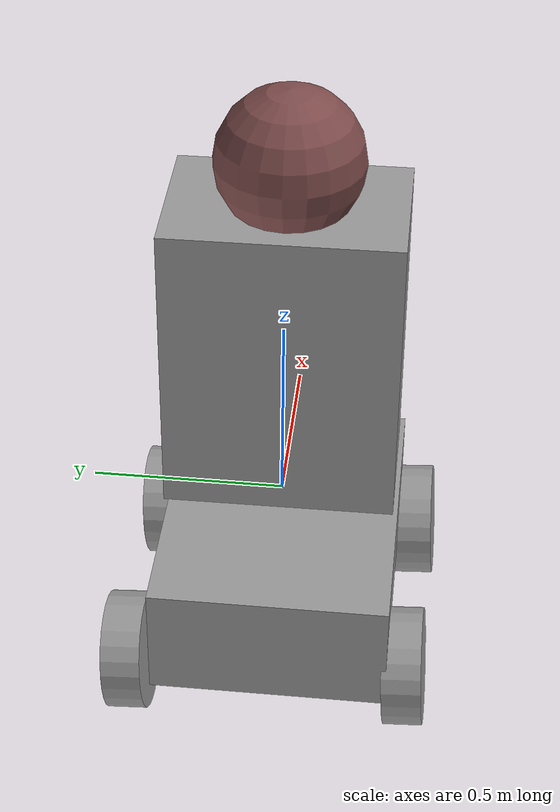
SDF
<?xml version='1.0'?>
<sdf version='1.6'>
  <model name='myrobot'>
    <link name='link_0'>
      <pose frame=''>-0.057634 -0.007553 -0.159414 0 -0 0</pose>
      <inertial>
        <mass>1</mass>
        <inertia>
          <ixx>0.166667</ixx>
          <ixy>0</ixy>
          <ixz>0</ixz>
          <iyy>0.166667</iyy>
          <iyz>0</iyz>
          <izz>0.166667</izz>
        </inertia>
        <pose frame=''>0 0 0 0 -0 0</pose>
      </inertial>
      <gravity>1</gravity>
      <self_collide>0</self_collide>
      <kinematic>0</kinematic>
      <visual name='visual'>
        <pose frame=''>0 0 0 0 -0 0</pose>
        <geometry>
          <box>
            <size>0.8 0.6 0.3</size>
          </box>
        </geometry>
        <material>
          <lighting>1</lighting>
          <script>
            <uri>file://media/materials/scripts/gazebo.material</uri>
            <name>Gazebo/Grey</name>
          </script>
          <shader type='pixel'>
            <normal_map>__default__</normal_map>
          </shader>
          <ambient>0.34 0.33 0.3 1</ambient>
          <diffuse>0.7 0.7 0.7 1</diffuse>
          <specular>0.01 0.01 0.01 1</specular>
          <emissive>0 0 0 1</emissive>
        </material>
        <transparency>0</transparency>
        <cast_shadows>1</cast_shadows>
      </visual>
      <collision name='collision'>
        <laser_retro>0</laser_retro>
        <max_contacts>10</max_contacts>
        <pose frame=''>0 0 0 0 -0 0</pose>
        <geometry>
          <box>
            <size>0.8 0.6 0.3</size>
          </box>
        </geometry>
        <surface>
          <friction>
            <ode>
              <mu>1</mu>
              <mu2>1</mu2>
              <fdir1>0 0 0</fdir1>
              <slip1>0</slip1>
              <slip2>0</slip2>
            </ode>
            <torsional>
              <coefficient>1</coefficient>
              <patch_radius>0</patch_radius>
              <surface_radius>0</surface_radius>
              <use_patch_radius>1</use_patch_radius>
              <ode>
                <slip>0</slip>
              </ode>
            </torsional>
          </friction>
          <bounce>
            <restitution_coefficient>0</restitution_coefficient>
            <threshold>1e+06</threshold>
          </bounce>
          <contact>
            <collide_without_contact>0</collide_without_contact>
            <collide_without_contact_bitmask>1</collide_without_contact_bitmask>
            <collide_bitmask>1</collide_bitmask>
            <ode>
              <soft_cfm>0</soft_cfm>
              <soft_erp>0.2</soft_erp>
              <kp>1e+13</kp>
              <kd>1</kd>
              <max_vel>0.01</max_vel>
              <min_depth>0</min_depth>
            </ode>
            <bullet>
              <split_impulse>1</split_impulse>
              <split_impulse_penetration_threshold>-0.01</split_impulse_penetration_threshold>
              <soft_cfm>0</soft_cfm>
              <soft_erp>0.2</soft_erp>
              <kp>1e+13</kp>
              <kd>1</kd>
            </bullet>
          </contact>
        </surface>
      </collision>
    </link>
    <link name='link_1_clone'>
      <pose frame=''>-0.340075 -0.349787 -0.28557 1.50886 -0 0</pose>
      <inertial>
        <mass>1</mass>
        <inertia>
          <ixx>0.145833</ixx>
          <ixy>0</ixy>
          <ixz>0</ixz>
          <iyy>0.145833</iyy>
          <iyz>0</iyz>
          <izz>0.125</izz>
        </inertia>
        <pose frame=''>0 0 0 0 -0 0</pose>
      </inertial>
      <self_collide>0</self_collide>
      <kinematic>0</kinematic>
      <visual name='visual'>
        <pose frame=''>0 0 0 0 -0 0</pose>
        <geometry>
          <cylinder>
            <radius>0.15</radius>
            <length>0.1</length>
          </cylinder>
        </geometry>
        <material>
          <lighting>1</lighting>
          <script>
            <uri>file://media/materials/scripts/gazebo.material</uri>
            <name>Gazebo/Grey</name>
          </script>
          <shader type='pixel'>
            <normal_map>__default__</normal_map>
          </shader>
          <ambient>0.3 0.3 0.3 1</ambient>
          <diffuse>0.7 0.7 0.7 1</diffuse>
          <specular>0.01 0.01 0.01 1</specular>
          <emissive>0 0 0 1</emissive>
        </material>
        <transparency>0</transparency>
        <cast_shadows>1</cast_shadows>
      </visual>
      <collision name='collision'>
        <laser_retro>0</laser_retro>
        <max_contacts>10</max_contacts>
        <pose frame=''>0 0 0 0 -0 0</pose>
        <geometry>
          <cylinder>
            <radius>0.15</radius>
            <length>0.1</length>
          </cylinder>
        </geometry>
        <surface>
          <friction>
            <ode>
              <mu>1</mu>
              <mu2>1</mu2>
              <fdir1>0 0 0</fdir1>
              <slip1>0</slip1>
              <slip2>0</slip2>
            </ode>
            <torsional>
              <coefficient>1</coefficient>
              <patch_radius>0</patch_radius>
              <surface_radius>0</surface_radius>
              <use_patch_radius>1</use_patch_radius>
              <ode>
                <slip>0</slip>
              </ode>
            </torsional>
          </friction>
          <bounce>
            <restitution_coefficient>0</restitution_coefficient>
            <threshold>1e+06</threshold>
          </bounce>
          <contact>
            <collide_without_contact>0</collide_without_contact>
            <collide_without_contact_bitmask>1</collide_without_contact_bitmask>
            <collide_bitmask>1</collide_bitmask>
            <ode>
              <soft_cfm>0</soft_cfm>
              <soft_erp>0.2</soft_erp>
              <kp>1e+13</kp>
              <kd>1</kd>
              <max_vel>0.01</max_vel>
              <min_depth>0</min_depth>
            </ode>
            <bullet>
              <split_impulse>1</split_impulse>
              <split_impulse_penetration_threshold>-0.01</split_impulse_penetration_threshold>
              <soft_cfm>0</soft_cfm>
              <soft_erp>0.2</soft_erp>
              <kp>1e+13</kp>
              <kd>1</kd>
            </bullet>
          </contact>
        </surface>
      </collision>
    </link>
    <link name='link_1_clone_clone'>
      <pose frame=''>0.247644 -0.351459 -0.28557 1.50886 -0 0</pose>
      <inertial>
        <mass>1</mass>
        <inertia>
          <ixx>0.145833</ixx>
          <ixy>0</ixy>
          <ixz>0</ixz>
          <iyy>0.145833</iyy>
          <iyz>0</iyz>
          <izz>0.125</izz>
        </inertia>
        <pose frame=''>0 0 0 0 -0 0</pose>
      </inertial>
      <self_collide>0</self_collide>
      <kinematic>0</kinematic>
      <visual name='visual'>
        <pose frame=''>0 0 0 0 -0 0</pose>
        <geometry>
          <cylinder>
            <radius>0.15</radius>
            <length>0.1</length>
          </cylinder>
        </geometry>
        <material>
          <lighting>1</lighting>
          <script>
            <uri>file://media/materials/scripts/gazebo.material</uri>
            <name>Gazebo/Grey</name>
          </script>
          <shader type='pixel'>
            <normal_map>__default__</normal_map>
          </shader>
          <ambient>0.3 0.3 0.3 1</ambient>
          <diffuse>0.7 0.7 0.7 1</diffuse>
          <specular>0.01 0.01 0.01 1</specular>
          <emissive>0 0 0 1</emissive>
        </material>
        <transparency>0</transparency>
        <cast_shadows>1</cast_shadows>
      </visual>
      <collision name='collision'>
        <laser_retro>0</laser_retro>
        <max_contacts>10</max_contacts>
        <pose frame=''>0 0 0 0 -0 0</pose>
        <geometry>
          <cylinder>
            <radius>0.15</radius>
            <length>0.1</length>
          </cylinder>
        </geometry>
        <surface>
          <friction>
            <ode>
              <mu>1</mu>
              <mu2>1</mu2>
              <fdir1>0 0 0</fdir1>
              <slip1>0</slip1>
              <slip2>0</slip2>
            </ode>
            <torsional>
              <coefficient>1</coefficient>
              <patch_radius>0</patch_radius>
              <surface_radius>0</surface_radius>
              <use_patch_radius>1</use_patch_radius>
              <ode>
                <slip>0</slip>
              </ode>
            </torsional>
          </friction>
          <bounce>
            <restitution_coefficient>0</restitution_coefficient>
            <threshold>1e+06</threshold>
          </bounce>
          <contact>
            <collide_without_contact>0</collide_without_contact>
            <collide_without_contact_bitmask>1</collide_without_contact_bitmask>
            <collide_bitmask>1</collide_bitmask>
            <ode>
              <soft_cfm>0</soft_cfm>
              <soft_erp>0.2</soft_erp>
              <kp>1e+13</kp>
              <kd>1</kd>
              <max_vel>0.01</max_vel>
              <min_depth>0</min_depth>
            </ode>
            <bullet>
              <split_impulse>1</split_impulse>
              <split_impulse_penetration_threshold>-0.01</split_impulse_penetration_threshold>
              <soft_cfm>0</soft_cfm>
              <soft_erp>0.2</soft_erp>
              <kp>1e+13</kp>
              <kd>1</kd>
            </bullet>
          </contact>
        </surface>
      </collision>
    </link>
    <link name='link_1_clone_clone_0'>
      <pose frame=''>0.255669 0.344642 -0.284499 1.50886 -0 0</pose>
      <inertial>
        <mass>1</mass>
        <inertia>
          <ixx>0.145833</ixx>
          <ixy>0</ixy>
          <ixz>0</ixz>
          <iyy>0.145833</iyy>
          <iyz>0</iyz>
          <izz>0.125</izz>
        </inertia>
        <pose frame=''>0 0 0 0 -0 0</pose>
      </inertial>
      <self_collide>0</self_collide>
      <kinematic>0</kinematic>
      <visual name='visual'>
        <pose frame=''>0 0 0 0 -0 0</pose>
        <geometry>
          <cylinder>
            <radius>0.15</radius>
            <length>0.1</length>
          </cylinder>
        </geometry>
        <material>
          <lighting>1</lighting>
          <script>
            <uri>file://media/materials/scripts/gazebo.material</uri>
            <name>Gazebo/Grey</name>
          </script>
          <shader type='pixel'>
            <normal_map>__default__</normal_map>
          </shader>
          <ambient>0.3 0.3 0.3 1</ambient>
          <diffuse>0.7 0.7 0.7 1</diffuse>
          <specular>0.01 0.01 0.01 1</specular>
          <emissive>0 0 0 1</emissive>
        </material>
        <transparency>0</transparency>
        <cast_shadows>1</cast_shadows>
      </visual>
      <collision name='collision'>
        <laser_retro>0</laser_retro>
        <max_contacts>10</max_contacts>
        <pose frame=''>0 0 0 0 -0 0</pose>
        <geometry>
          <cylinder>
            <radius>0.15</radius>
            <length>0.1</length>
          </cylinder>
        </geometry>
        <surface>
          <friction>
            <ode>
              <mu>1</mu>
              <mu2>1</mu2>
              <fdir1>0 0 0</fdir1>
              <slip1>0</slip1>
              <slip2>0</slip2>
            </ode>
            <torsional>
              <coefficient>1</coefficient>
              <patch_radius>0</patch_radius>
              <surface_radius>0</surface_radius>
              <use_patch_radius>1</use_patch_radius>
              <ode>
                <slip>0</slip>
              </ode>
            </torsional>
          </friction>
          <bounce>
            <restitution_coefficient>0</restitution_coefficient>
            <threshold>1e+06</threshold>
          </bounce>
          <contact>
            <collide_without_contact>0</collide_without_contact>
            <collide_without_contact_bitmask>1</collide_without_contact_bitmask>
            <collide_bitmask>1</collide_bitmask>
            <ode>
              <soft_cfm>0</soft_cfm>
              <soft_erp>0.2</soft_erp>
              <kp>1e+13</kp>
              <kd>1</kd>
              <max_vel>0.01</max_vel>
              <min_depth>0</min_depth>
            </ode>
            <bullet>
              <split_impulse>1</split_impulse>
              <split_impulse_penetration_threshold>-0.01</split_impulse_penetration_threshold>
              <soft_cfm>0</soft_cfm>
              <soft_erp>0.2</soft_erp>
              <kp>1e+13</kp>
              <kd>1</kd>
            </bullet>
          </contact>
        </surface>
      </collision>
    </link>
    <link name='link_1_clone_clone_1'>
      <pose frame=''>-0.3565 0.357207 -0.28557 1.50886 -0 0</pose>
      <inertial>
        <mass>1</mass>
        <inertia>
          <ixx>0.145833</ixx>
          <ixy>0</ixy>
          <ixz>0</ixz>
          <iyy>0.145833</iyy>
          <iyz>0</iyz>
          <izz>0.125</izz>
        </inertia>
        <pose frame=''>0 0 0 0 -0 0</pose>
      </inertial>
      <self_collide>0</self_collide>
      <kinematic>0</kinematic>
      <visual name='visual'>
        <pose frame=''>0 0 0 0 -0 0</pose>
        <geometry>
          <cylinder>
            <radius>0.15</radius>
            <length>0.1</length>
          </cylinder>
        </geometry>
        <material>
          <lighting>1</lighting>
          <script>
            <uri>file://media/materials/scripts/gazebo.material</uri>
            <name>Gazebo/Grey</name>
          </script>
          <shader type='pixel'>
            <normal_map>__default__</normal_map>
          </shader>
          <ambient>0.3 0.3 0.3 1</ambient>
          <diffuse>0.7 0.7 0.7 1</diffuse>
          <specular>0.01 0.01 0.01 1</specular>
          <emissive>0 0 0 1</emissive>
        </material>
        <transparency>0</transparency>
        <cast_shadows>1</cast_shadows>
      </visual>
      <collision name='collision'>
        <laser_retro>0</laser_retro>
        <max_contacts>10</max_contacts>
        <pose frame=''>0 0 0 0 -0 0</pose>
        <geometry>
          <cylinder>
            <radius>0.15</radius>
            <length>0.1</length>
          </cylinder>
        </geometry>
        <surface>
          <friction>
            <ode>
              <mu>1</mu>
              <mu2>1</mu2>
              <fdir1>0 0 0</fdir1>
              <slip1>0</slip1>
              <slip2>0</slip2>
            </ode>
            <torsional>
              <coefficient>1</coefficient>
              <patch_radius>0</patch_radius>
              <surface_radius>0</surface_radius>
              <use_patch_radius>1</use_patch_radius>
              <ode>
                <slip>0</slip>
              </ode>
            </torsional>
          </friction>
          <bounce>
            <restitution_coefficient>0</restitution_coefficient>
            <threshold>1e+06</threshold>
          </bounce>
          <contact>
            <collide_without_contact>0</collide_without_contact>
            <collide_without_contact_bitmask>1</collide_without_contact_bitmask>
            <collide_bitmask>1</collide_bitmask>
            <ode>
              <soft_cfm>0</soft_cfm>
              <soft_erp>0.2</soft_erp>
              <kp>1e+13</kp>
              <kd>1</kd>
              <max_vel>0.01</max_vel>
              <min_depth>0</min_depth>
            </ode>
            <bullet>
              <split_impulse>1</split_impulse>
              <split_impulse_penetration_threshold>-0.01</split_impulse_penetration_threshold>
              <soft_cfm>0</soft_cfm>
              <soft_erp>0.2</soft_erp>
              <kp>1e+13</kp>
              <kd>1</kd>
            </bullet>
          </contact>
        </surface>
      </collision>
    </link>
    <link name='link_2'>
      <pose frame=''>0.124216 0.005478 0.392396 0 -0 1.57469</pose>
      <inertial>
        <mass>1</mass>
        <inertia>
          <ixx>0.166667</ixx>
          <ixy>0</ixy>
          <ixz>0</ixz>
          <iyy>0.166667</iyy>
          <iyz>0</iyz>
          <izz>0.166667</izz>
        </inertia>
        <pose frame=''>0 0 0 0 -0 0</pose>
      </inertial>
      <gravity>1</gravity>
      <self_collide>0</self_collide>
      <kinematic>0</kinematic>
      <visual name='visual'>
        <pose frame=''>0 0 0 0 -0 0</pose>
        <geometry>
          <box>
            <size>0.6 0.4 0.8</size>
          </box>
        </geometry>
        <material>
          <lighting>1</lighting>
          <script>
            <uri>file://media/materials/scripts/gazebo.material</uri>
            <name>Gazebo/Grey</name>
          </script>
          <shader type='pixel'>
            <normal_map>__default__</normal_map>
          </shader>
          <ambient>0.34 0.33 0.3 1</ambient>
          <diffuse>0.7 0.7 0.7 1</diffuse>
          <specular>0.01 0.01 0.01 1</specular>
          <emissive>0 0 0 1</emissive>
        </material>
        <transparency>0</transparency>
        <cast_shadows>1</cast_shadows>
      </visual>
      <collision name='collision'>
        <laser_retro>0</laser_retro>
        <max_contacts>10</max_contacts>
        <pose frame=''>0 0 0 0 -0 0</pose>
        <geometry>
          <box>
            <size>0.6 0.4 0.8</size>
          </box>
        </geometry>
        <surface>
          <friction>
            <ode>
              <mu>1</mu>
              <mu2>1</mu2>
              <fdir1>0 0 0</fdir1>
              <slip1>0</slip1>
              <slip2>0</slip2>
            </ode>
            <torsional>
              <coefficient>1</coefficient>
              <patch_radius>0</patch_radius>
              <surface_radius>0</surface_radius>
              <use_patch_radius>1</use_patch_radius>
              <ode>
                <slip>0</slip>
              </ode>
            </torsional>
          </friction>
          <bounce>
            <restitution_coefficient>0</restitution_coefficient>
            <threshold>1e+06</threshold>
          </bounce>
          <contact>
            <collide_without_contact>0</collide_without_contact>
            <collide_without_contact_bitmask>1</collide_without_contact_bitmask>
            <collide_bitmask>1</collide_bitmask>
            <ode>
              <soft_cfm>0</soft_cfm>
              <soft_erp>0.2</soft_erp>
              <kp>1e+13</kp>
              <kd>1</kd>
              <max_vel>0.01</max_vel>
              <min_depth>0</min_depth>
            </ode>
            <bullet>
              <split_impulse>1</split_impulse>
              <split_impulse_penetration_threshold>-0.01</split_impulse_penetration_threshold>
              <soft_cfm>0</soft_cfm>
              <soft_erp>0.2</soft_erp>
              <kp>1e+13</kp>
              <kd>1</kd>
            </bullet>
          </contact>
        </surface>
      </collision>
    </link>
    <link name='link_3'>
      <pose frame=''>0.126686 0.001469 0.908226 0 -0 0</pose>
      <inertial>
        <mass>0.0538199</mass>
        <inertia>
          <ixx>0.00076719</ixx>
          <ixy>0</ixy>
          <ixz>0</ixz>
          <iyy>0.00076719</iyy>
          <iyz>0</iyz>
          <izz>0.00076719</izz>
        </inertia>
        <pose frame=''>0 0 0 0 -0 0</pose>
      </inertial>
      <gravity>1</gravity>
      <self_collide>0</self_collide>
      <kinematic>0</kinematic>
      <visual name='visual'>
        <pose frame=''>0 0 0 0 -0 0</pose>
        <geometry>
          <sphere>
            <radius>0.188778</radius>
          </sphere>
        </geometry>
        <material>
          <lighting>1</lighting>
          <script>
            <uri>file://media/materials/scripts/gazebo.material</uri>
            <name>Gazebo/Grey</name>
          </script>
          <shader type='pixel'>
            <normal_map>__default__</normal_map>
          </shader>
          <ambient>0.5 0.3 0.3 1</ambient>
          <diffuse>0.7 0.7 0.7 1</diffuse>
          <specular>0.01 0.01 0.01 1</specular>
          <emissive>0 0 0 1</emissive>
        </material>
        <transparency>0</transparency>
        <cast_shadows>1</cast_shadows>
      </visual>
      <collision name='collision'>
        <laser_retro>0</laser_retro>
        <max_contacts>10</max_contacts>
        <pose frame=''>0 0 0 0 -0 0</pose>
        <geometry>
          <sphere>
            <radius>0.188778</radius>
          </sphere>
        </geometry>
        <surface>
          <friction>
            <ode>
              <mu>1</mu>
              <mu2>1</mu2>
              <fdir1>0 0 0</fdir1>
              <slip1>0</slip1>
              <slip2>0</slip2>
            </ode>
            <torsional>
              <coefficient>1</coefficient>
              <patch_radius>0</patch_radius>
              <surface_radius>0</surface_radius>
              <use_patch_radius>1</use_patch_radius>
              <ode>
                <slip>0</slip>
              </ode>
            </torsional>
          </friction>
          <bounce>
            <restitution_coefficient>0</restitution_coefficient>
            <threshold>1e+06</threshold>
          </bounce>
          <contact>
            <collide_without_contact>0</collide_without_contact>
            <collide_without_contact_bitmask>1</collide_without_contact_bitmask>
            <collide_bitmask>1</collide_bitmask>
            <ode>
              <soft_cfm>0</soft_cfm>
              <soft_erp>0.2</soft_erp>
              <kp>1e+13</kp>
              <kd>1</kd>
              <max_vel>0.01</max_vel>
              <min_depth>0</min_depth>
            </ode>
            <bullet>
              <split_impulse>1</split_impulse>
              <split_impulse_penetration_threshold>-0.01</split_impulse_penetration_threshold>
              <soft_cfm>0</soft_cfm>
              <soft_erp>0.2</soft_erp>
              <kp>1e+13</kp>
              <kd>1</kd>
            </bullet>
          </contact>
        </surface>
      </collision>
    </link>
    <joint name='link_0_JOINT_0' type='fixed'>
      <parent>link_0</parent>
      <child>link_2</child>
      <pose frame=''>0 0 0 0 -0 0</pose>
      <physics>
        <ode>
          <limit>
            <cfm>0</cfm>
            <erp>0.2</erp>
          </limit>
          <suspension>
            <cfm>0</cfm>
            <erp>0.2</erp>
          </suspension>
        </ode>
      </physics>
    </joint>
    <joint name='link_0_JOINT_1' type='revolute'>
      <parent>link_0</parent>
      <child>link_1_clone_clone_0</child>
      <pose frame=''>0 0 0 0 -0 0</pose>
      <axis>
        <xyz>0 0 1</xyz>
        <use_parent_model_frame>0</use_parent_model_frame>
        <limit>
          <lower>-1.79769e+308</lower>
          <upper>1.79769e+308</upper>
          <effort>-1</effort>
          <velocity>-1</velocity>
        </limit>
        <dynamics>
          <spring_reference>0</spring_reference>
          <spring_stiffness>0</spring_stiffness>
          <damping>0</damping>
        </dynamics>
      </axis>
      <physics>
        <ode>
          <limit>
            <cfm>0</cfm>
            <erp>0.2</erp>
          </limit>
          <suspension>
            <cfm>0</cfm>
            <erp>0.2</erp>
          </suspension>
        </ode>
      </physics>
    </joint>
    <joint name='link_0_JOINT_2' type='revolute'>
      <parent>link_0</parent>
      <child>link_1_clone_clone_1</child>
      <pose frame=''>0 0 0 0 -0 0</pose>
      <axis>
        <xyz>0 0 1</xyz>
        <use_parent_model_frame>0</use_parent_model_frame>
        <limit>
          <lower>-1.79769e+308</lower>
          <upper>1.79769e+308</upper>
          <effort>-1</effort>
          <velocity>-1</velocity>
        </limit>
        <dynamics>
          <spring_reference>0</spring_reference>
          <spring_stiffness>0</spring_stiffness>
          <damping>0</damping>
        </dynamics>
      </axis>
      <physics>
        <ode>
          <limit>
            <cfm>0</cfm>
            <erp>0.2</erp>
          </limit>
          <suspension>
            <cfm>0</cfm>
            <erp>0.2</erp>
          </suspension>
        </ode>
      </physics>
    </joint>
    <joint name='link_0_JOINT_3' type='revolute'>
      <parent>link_0</parent>
      <child>link_1_clone</child>
      <pose frame=''>0 0 0 0 -0 0</pose>
      <axis>
        <xyz>0 0 1</xyz>
        <use_parent_model_frame>0</use_parent_model_frame>
        <limit>
          <lower>-1.79769e+308</lower>
          <upper>1.79769e+308</upper>
          <effort>-1</effort>
          <velocity>-1</velocity>
        </limit>
        <dynamics>
          <spring_reference>0</spring_reference>
          <spring_stiffness>0</spring_stiffness>
          <damping>0</damping>
        </dynamics>
      </axis>
      <physics>
        <ode>
          <limit>
            <cfm>0</cfm>
            <erp>0.2</erp>
          </limit>
          <suspension>
            <cfm>0</cfm>
            <erp>0.2</erp>
          </suspension>
        </ode>
      </physics>
    </joint>
    <joint name='link_0_JOINT_4' type='revolute'>
      <parent>link_0</parent>
      <child>link_1_clone_clone</child>
      <pose frame=''>0 0 0 0 -0 0</pose>
      <axis>
        <xyz>0 0 1</xyz>
        <use_parent_model_frame>0</use_parent_model_frame>
        <limit>
          <lower>-1.79769e+308</lower>
          <upper>1.79769e+308</upper>
          <effort>-1</effort>
          <velocity>-1</velocity>
        </limit>
        <dynamics>
          <spring_reference>0</spring_reference>
          <spring_stiffness>0</spring_stiffness>
          <damping>0</damping>
        </dynamics>
      </axis>
      <physics>
        <ode>
          <limit>
            <cfm>0</cfm>
            <erp>0.2</erp>
          </limit>
          <suspension>
            <cfm>0</cfm>
            <erp>0.2</erp>
          </suspension>
        </ode>
      </physics>
    </joint>
    <joint name='link_3_JOINT_6' type='revolute'>
      <parent>link_3</parent>
      <child>link_2</child>
      <pose frame=''>0 0 0 0 -0 0</pose>
      <axis>
        <xyz>0 0 1</xyz>
        <use_parent_model_frame>0</use_parent_model_frame>
        <limit>
          <lower>-1.79769e+308</lower>
          <upper>1.79769e+308</upper>
          <effort>-1</effort>
          <velocity>-1</velocity>
        </limit>
        <dynamics>
          <spring_reference>0</spring_reference>
          <spring_stiffness>0</spring_stiffness>
          <damping>0</damping>
        </dynamics>
      </axis>
      <physics>
        <ode>
          <limit>
            <cfm>0</cfm>
            <erp>0.2</erp>
          </limit>
          <suspension>
            <cfm>0</cfm>
            <erp>0.2</erp>
          </suspension>
        </ode>
      </physics>
    </joint>
    <static>0</static>
    <allow_auto_disable>1</allow_auto_disable>
  </model>
</sdf>
